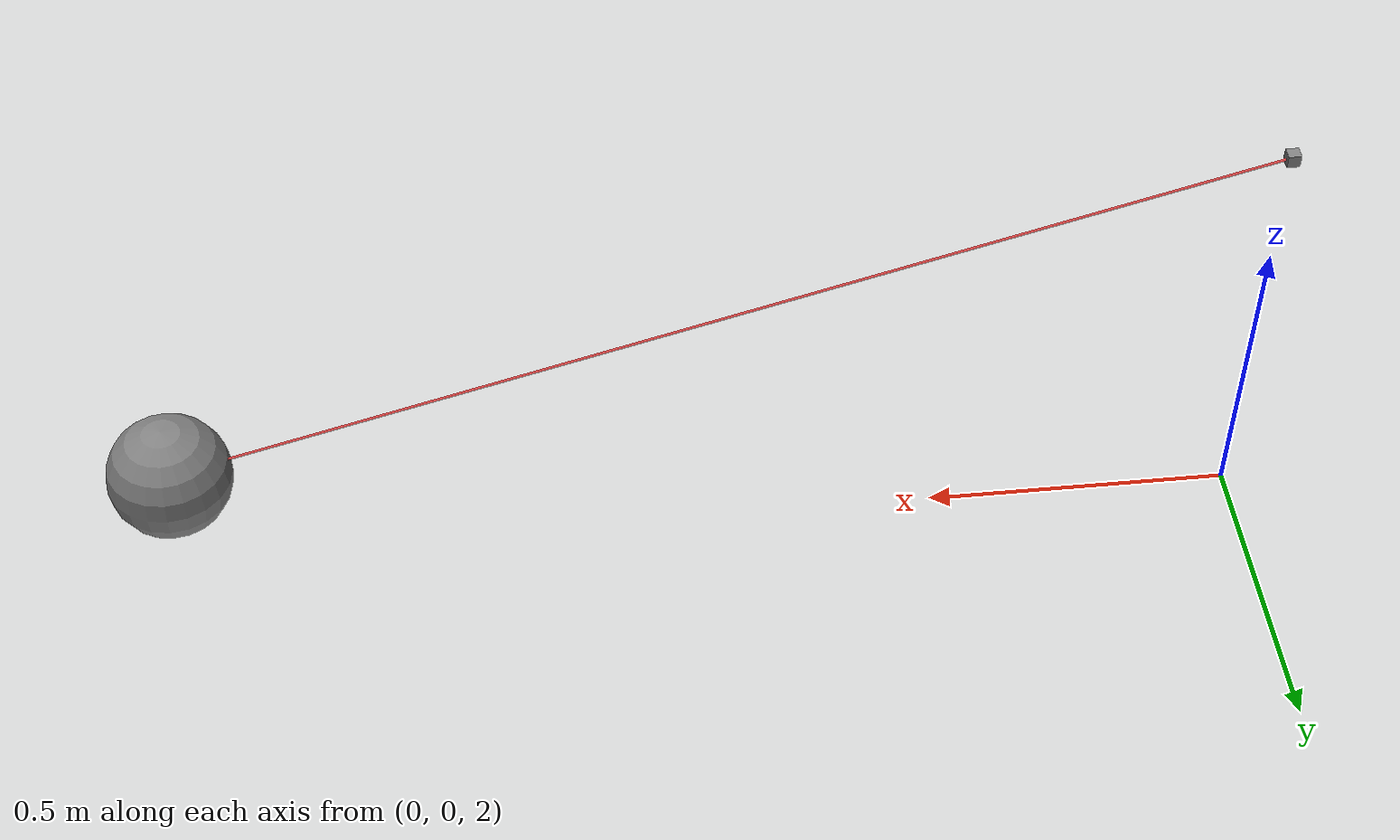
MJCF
<mujoco model="scenario">
  <option timestep="0.00050000000000000001" integrator="implicitfast"/>
  <visual>
    <global azimuth="150" elevation="-20"/>
    <headlight ambient="0.29999999999999999 0.29999999999999999 0.29999999999999999" diffuse="0.59999999999999998 0.59999999999999998 0.59999999999999998" specular="0 0 0"/>
    <rgba haze="0.14999999999999999 0.25 0.34999999999999998 1"/>
  </visual>
  <default>
    <default class="scene/"/>
  </default>
  <asset>
    <texture name="skybox" builtin="gradient" rgb1="0.29999999999999999 0.5 0.69999999999999996" rgb2="0 0 0" width="512" height="3072"/>
    <texture name="grouplane" type="2d" builtin="checker" rgb1="0.20000000000000001 0.29999999999999999 0.40000000000000002" rgb2="0.10000000000000001 0.20000000000000001 0.29999999999999999" mark="edge" markrgb="0.80000000000000004 0.80000000000000004 0.80000000000000004" width="300" height="300"/>
    <material name="groundplane_mat" class="scene/" texture="grouplane" texrepeat="5 5" texuniform="true" reflectance="0.20000000000000001"/>
  </asset>
  <worldbody>
    <light name="global_light" class="scene/" directional="false" pos="0 0 3" dir="0 0 -1"/>
    <geom name="floor" class="scene/" type="plane" conaffinity="15" condim="3" size="0 0 0.125" material="groundplane_mat"/>
    <body name="pend_point" pos="0 0 2.7">
      <geom name="geom_rot_pend" class="scene/" type="box" size="0.01 0.01 0.01"/>
      <site name="s1" pos="0 0 0.0"/>
    </body>
    <body name="mass_pendulun" pos="1.73 0 2.2">
      <freejoint/>
      <geom name="geom_mass_pend" class="scene/" type="sphere" size="0.1" mass="5"/>
      <site name="s2" pos="0 0 0.0"/>
    </body>
  </worldbody>
  <tendon>
    <spatial range="1.9 2.1" limited="true" width=".002" rgba=".95 .3 .3 1">
    <site site="s1"/>
    <site site="s2"/>
    </spatial>
    </tendon>
</mujoco>
